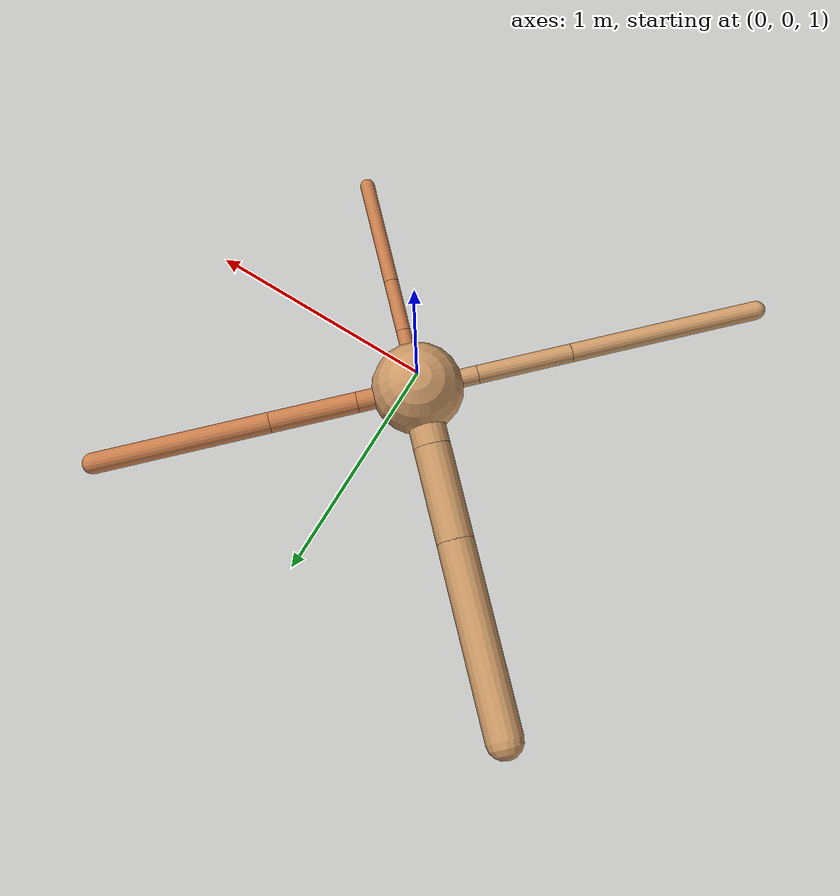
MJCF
<?xml version="1.0" ?>
<mujoco model="ant">

	<compiler angle="degree" coordinate="local" inertiafromgeom="true"/>

	<option integrator="RK4" timestep="0.01"/>

	<custom>

		<numeric data="0.0 0.0 0.55 1.0 0.0 0.0 0.0 0.0 1.0 0.0 -1.0 0.0 -1.0 0.0 1.0" name="init_qpos"/>

	</custom>

	<default>

		<joint armature="1" damping="1" limited="true"/>

		<geom conaffinity="0" condim="3" density="5.0" friction="1.5 0.1 0.1" margin="0.01" rgba="0.8 0.6 0.4 1"/>

	</default>

	<worldbody>

		<body name="torso" pos="0 0 0.75">

			<geom name="torso_geom" pos="0 0 0" size="0.21307156223765505" type="sphere"/>

			<!--joint armature="0" damping="0" limited="false" margin="0.01" name="root" pos="0 0 0" type="free"/-->

			<body name="front_left_leg" pos="0 0 0">

				<geom fromto="0 0 0 0.2 0.2 0" name="aux_1_geom" size="0.048889054800043796" type="capsule" rgba=".8 .5 .3 1"/>

				<body name="aux_1" pos="0.2 0.2 0">

					<joint axis="0 0 1" name="hip_1" pos="0.0 0.0 0.0" range="-40 40" type="hinge"/>

					<geom fromto="0 0 0 0.2879419137915624 0.2879419137915624 0" name="left_leg_geom" size="0.048889054800043796" type="capsule" rgba=".8 .5 .3 1"/>

					<body pos="0.2879419137915624 0.2879419137915624 0" name="front_left_foot">

						<joint axis="-1 1 0" name="ankle_1" pos="0.0 0.0 0.0" range="30 100" type="hinge"/>

						<geom fromto="0 0 0 0.5758838275831248 0.5758838275831248 0" name="left_ankle_geom" size="0.048889054800043796" type="capsule" rgba=".8 .5 .3 1"/>

					</body>

				</body>

			</body>

			<body name="front_right_leg" pos="0 0 0">

				<geom fromto="0 0 0 -0.2 0.2 0" name="aux_2_geom" size="0.08625250795928563" type="capsule"/>

				<body name="aux_2" pos="-0.2 0.2 0">

					<joint axis="0 0 1" name="hip_2" pos="0.0 0.0 0.0" range="-40 40" type="hinge"/>

					<geom fromto="0 0 0 -0.3135901641447332 0.3135901641447332 0" name="right_leg_geom" size="0.08625250795928563" type="capsule"/>

					<body pos="-0.3135901641447332 0.3135901641447332 0" name="front_right_foot">

						<joint axis="1 1 0" name="ankle_2" pos="0.0 0.0 0.0" range="-100 -30" type="hinge"/>

						<geom fromto="0 0 0 -0.6271803282894663 0.6271803282894663 0" name="right_ankle_geom" size="0.08625250795928563" type="capsule"/>

					</body>

				</body>

			</body>

			<body name="left_back_leg" pos="0 0 0">

				<geom fromto="0 0 0 -0.2 -0.2 0" name="aux_3_geom" size="0.043234146721798615" type="capsule"/>

				<body name="aux_3" pos="-0.2 -0.2 0">

					<joint axis="0 0 1" name="hip_3" pos="0.0 0.0 0.0" range="-40 40" type="hinge"/>

					<geom fromto="0 0 0 -0.31400344460664664 -0.31400344460664664 0" name="back_leg_geom" size="0.043234146721798615" type="capsule"/>

					<body pos="-0.31400344460664664 -0.31400344460664664 0" name="left_back_foot">

						<joint axis="-1 1 0" name="ankle_3" pos="0.0 0.0 0.0" range="-100 -30" type="hinge"/>

						<geom fromto="0 0 0 -0.6280068892132933 -0.6280068892132933 0" name="third_ankle_geom" size="0.043234146721798615" type="capsule"/>

					</body>

				</body>

			</body>

			<body name="right_back_leg" pos="0 0 0">

				<geom fromto="0 0 0 0.2 -0.2 0" name="aux_4_geom" size="0.03367614559199379" type="capsule" rgba=".8 .5 .3 1"/>

				<body name="aux_4" pos="0.2 -0.2 0">

					<joint axis="0 0 1" name="hip_4" pos="0.0 0.0 0.0" range="-40 40" type="hinge"/>

					<geom fromto="0 0 0 0.17564568816847392 -0.17564568816847392 0" name="rightback_leg_geom" size="0.03367614559199379" type="capsule" rgba=".8 .5 .3 1"/>

					<body pos="0.17564568816847392 -0.17564568816847392 0" name="right_back_foot">

						<joint axis="1 1 0" name="ankle_4" pos="0.0 0.0 0.0" range="30 100" type="hinge"/>

						<geom fromto="0 0 0 0.35129137633694785 -0.35129137633694785 0" name="fourth_ankle_geom" size="0.03367614559199379" type="capsule" rgba=".8 .5 .3 1"/>

					</body>

				</body>

			</body>

		</body>

	</worldbody>

	<actuator>

		<motor ctrllimited="true" ctrlrange="-1.0 1.0" joint="hip_4" gear="150"/>

		<motor ctrllimited="true" ctrlrange="-1.0 1.0" joint="ankle_4" gear="150"/>

		<motor ctrllimited="true" ctrlrange="-1.0 1.0" joint="hip_1" gear="150"/>

		<motor ctrllimited="true" ctrlrange="-1.0 1.0" joint="ankle_1" gear="150"/>

		<motor ctrllimited="true" ctrlrange="-1.0 1.0" joint="hip_2" gear="150"/>

		<motor ctrllimited="true" ctrlrange="-1.0 1.0" joint="ankle_2" gear="150"/>

		<motor ctrllimited="true" ctrlrange="-1.0 1.0" joint="hip_3" gear="150"/>

		<motor ctrllimited="true" ctrlrange="-1.0 1.0" joint="ankle_3" gear="150"/>

	</actuator>

</mujoco>
